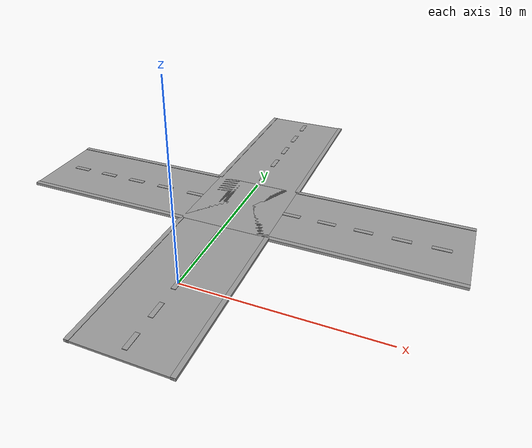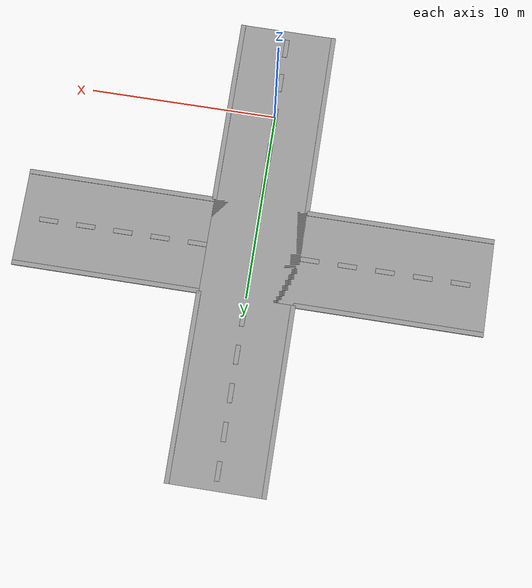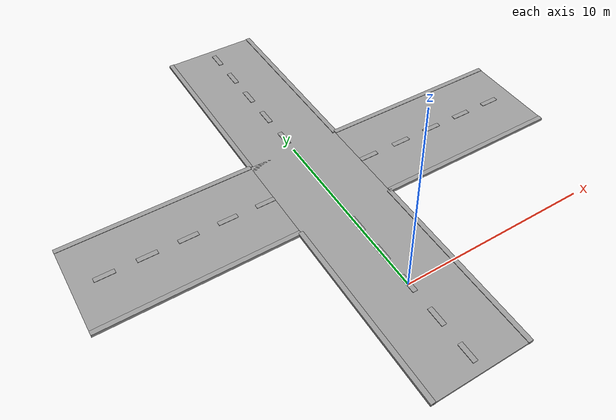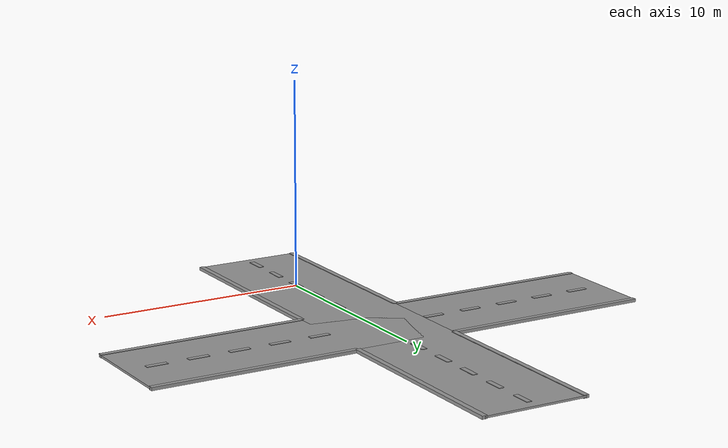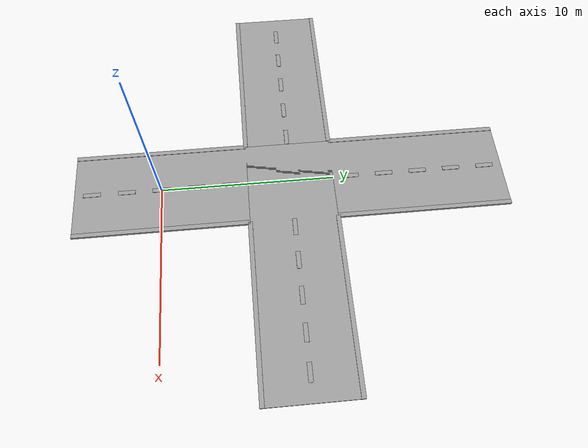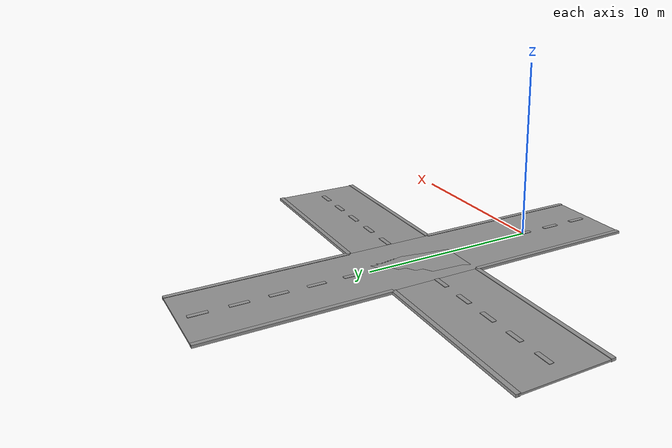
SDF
<sdf version="1.7">
 <model name="4_yol">
  <link name="link_0">
   <inertial>
    <mass>8812.5</mass>
    <inertia><ixx>73454</ixx><ixy>0</ixy><ixz>0</ixz><iyy>18375.9</iyy><iyz>0</iyz><izz>91796.9</izz></inertia>
   </inertial>
   <visual name="ModelPreview_1::link_0::visual_2">
    <pose>0 7.5 0 0 -0 0</pose>
    <geometry><box><size>25 5 0.1</size></box></geometry>
    <material>
     <lighting>1</lighting>
     <script><uri>file://media/materials/scripts/gazebo.material</uri><name>Gazebo/Grey</name></script>
     <shader type="pixel"><normal_map>__default__</normal_map></shader>
     <ambient>0.008 0.008 0.008 1</ambient>
     <diffuse>0.18 0.204 0.212 1</diffuse>
     <specular>0 0 0 1</specular>
     <emissive>0 0 0 1</emissive>
    </material>
   </visual>
   <visual name="ModelPreview_1::link_0::visual_4">
    <pose>2.5 15 0 0 -0 0</pose>
    <geometry><box><size>0.25 10 0.15</size></box></geometry>
    <material>
     <lighting>1</lighting>
     <script><uri>file://media/materials/scripts/gazebo.material</uri><name>Gazebo/Grey</name></script>
     <shader type="pixel"><normal_map>__default__</normal_map></shader>
     <ambient>1 1 1 1</ambient>
     <diffuse>1 1 1 1</diffuse>
     <specular>1 1 1 1</specular>
     <emissive>1 1 1 1</emissive>
    </material>
   </visual>
   <visual name="ModelPreview_1::link_0::visual_5">
    <pose>-2.5 15 0 0 -0 0</pose>
    <geometry><box><size>0.25 10 0.15</size></box></geometry>
    <material>
     <lighting>1</lighting>
     <script><uri>file://media/materials/scripts/gazebo.material</uri><name>Gazebo/Grey</name></script>
     <shader type="pixel"><normal_map>__default__</normal_map></shader>
     <ambient>1 1 1 1</ambient>
     <diffuse>1 1 1 1</diffuse>
     <specular>1 1 1 1</specular>
     <emissive>1 1 1 1</emissive>
    </material>
   </visual>
   <visual name="ModelPreview_1::link_0::visual_3">
    <pose>2.5 0 0 0 -0 0</pose>
    <geometry><box><size>0.25 10 0.15</size></box></geometry>
    <material>
     <lighting>1</lighting>
     <script><uri>file://media/materials/scripts/gazebo.material</uri><name>Gazebo/Grey</name></script>
     <shader type="pixel"><normal_map>__default__</normal_map></shader>
     <ambient>1 1 1 1</ambient>
     <diffuse>1 1 1 1</diffuse>
     <specular>1 1 1 1</specular>
     <emissive>1 1 1 1</emissive>
    </material>
   </visual>
   <visual name="ModelPreview_1::link_0::visual_6">
    <pose>-2.5 0 0 0 -0 0</pose>
    <geometry><box><size>0.25 10 0.15</size></box></geometry>
    <material>
     <lighting>1</lighting>
     <script><uri>file://media/materials/scripts/gazebo.material</uri><name>Gazebo/Grey</name></script>
     <shader type="pixel"><normal_map>__default__</normal_map></shader>
     <ambient>1 1 1 1</ambient>
     <diffuse>1 1 1 1</diffuse>
     <specular>1 1 1 1</specular>
     <emissive>1 1 1 1</emissive>
    </material>
   </visual>
   <visual name="ModelPreview_1::link_0::visual_7">
    <pose>7.5 5 0 0 -0 0</pose>
    <geometry><box><size>10 0.25 0.15</size></box></geometry>
    <material>
     <lighting>1</lighting>
     <script><uri>file://media/materials/scripts/gazebo.material</uri><name>Gazebo/Grey</name></script>
     <shader type="pixel"><normal_map>__default__</normal_map></shader>
     <ambient>1 1 1 1</ambient>
     <diffuse>1 1 1 1</diffuse>
     <specular>1 1 1 1</specular>
     <emissive>1 1 1 1</emissive>
    </material>
   </visual>
   <visual name="ModelPreview_1::link_0::visual_8">
    <pose>7.5 10 0 0 -0 0</pose>
    <geometry><box><size>10 0.25 0.15</size></box></geometry>
    <material>
     <lighting>1</lighting>
     <script><uri>file://media/materials/scripts/gazebo.material</uri><name>Gazebo/Grey</name></script>
     <shader type="pixel"><normal_map>__default__</normal_map></shader>
     <ambient>1 1 1 1</ambient>
     <diffuse>1 1 1 1</diffuse>
     <specular>1 1 1 1</specular>
     <emissive>1 1 1 1</emissive>
    </material>
   </visual>
   <visual name="ModelPreview_1::link_0::visual_9">
    <pose>-7.5 5 0 0 -0 0</pose>
    <geometry><box><size>10 0.25 0.15</size></box></geometry>
    <material>
     <lighting>1</lighting>
     <script><uri>file://media/materials/scripts/gazebo.material</uri><name>Gazebo/Grey</name></script>
     <shader type="pixel"><normal_map>__default__</normal_map></shader>
     <ambient>1 1 1 1</ambient>
     <diffuse>1 1 1 1</diffuse>
     <specular>1 1 1 1</specular>
     <emissive>1 1 1 1</emissive>
    </material>
   </visual>
   <visual name="ModelPreview_1::link_0::visual_10">
    <pose>-7.5 10 0 0 -0 0</pose>
    <geometry><box><size>10 0.25 0.15</size></box></geometry>
    <material>
     <lighting>1</lighting>
     <script><uri>file://media/materials/scripts/gazebo.material</uri><name>Gazebo/Grey</name></script>
     <shader type="pixel"><normal_map>__default__</normal_map></shader>
     <ambient>1 1 1 1</ambient>
     <diffuse>1 1 1 1</diffuse>
     <specular>1 1 1 1</specular>
     <emissive>1 1 1 1</emissive>
    </material>
   </visual>
   <visual name="visual">
    <pose>0 7.5 0 0 -0 0</pose>
    <geometry><box><size>5 25 0.1</size></box></geometry>
    <material>
     <lighting>1</lighting>
     <script><uri>file://media/materials/scripts/gazebo.material</uri><name>Gazebo/Grey</name></script>
     <shader type="pixel"><normal_map>__default__</normal_map></shader>
     <ambient>0.008 0.008 0.008 1</ambient>
     <diffuse>0.18 0.204 0.212 1</diffuse>
     <specular>0 0 0 1</specular>
     <emissive>0 0 0 1</emissive>
    </material>
   </visual>
   <collision name="collision">
    <pose>0 7.5 0 0 -0 0</pose>
    <geometry><box><size>5 25 0.15</size></box></geometry>
    <surface>
     <friction>
      <ode><mu>1</mu><mu2>1</mu2><fdir1>0 0 0</fdir1><slip1>0</slip1><slip2>0</slip2></ode>
      <torsional>
       <coefficient>1</coefficient>
       <patch_radius>0</patch_radius>
       <surface_radius>0</surface_radius>
       <use_patch_radius>1</use_patch_radius>
       <ode><slip>0</slip></ode>
      </torsional>
     </friction>
     <bounce><restitution_coefficient>0</restitution_coefficient><threshold>1e+06</threshold></bounce>
     <contact>
      <collide_without_contact>0</collide_without_contact>
      <collide_without_contact_bitmask>1</collide_without_contact_bitmask>
      <collide_bitmask>1</collide_bitmask>
      <ode>
       <soft_cfm>0</soft_cfm>
       <soft_erp>0.2</soft_erp>
       <kp>1e+13</kp>
       <kd>1</kd>
       <max_vel>0.01</max_vel>
       <min_depth>0</min_depth>
      </ode>
      <bullet>
       <split_impulse>1</split_impulse>
       <split_impulse_penetration_threshold>-0.01</split_impulse_penetration_threshold>
       <soft_cfm>0</soft_cfm>
       <soft_erp>0.2</soft_erp>
       <kp>1e+13</kp>
       <kd>1</kd>
      </bullet>
     </contact>
    </surface>
   </collision>
   <collision name="collision_1">
    <pose>0 7.5 0 0 -0 0</pose>
    <geometry><box><size>25 5 0.1</size></box></geometry>
    <surface>
     <friction>
      <ode><mu>1</mu><mu2>1</mu2><fdir1>0 0 0</fdir1><slip1>0</slip1><slip2>0</slip2></ode>
      <torsional>
       <coefficient>1</coefficient>
       <patch_radius>0</patch_radius>
       <surface_radius>0</surface_radius>
       <use_patch_radius>1</use_patch_radius>
       <ode><slip>0</slip></ode>
      </torsional>
     </friction>
     <bounce><restitution_coefficient>0</restitution_coefficient><threshold>1e+06</threshold></bounce>
     <contact>
      <collide_without_contact>0</collide_without_contact>
      <collide_without_contact_bitmask>1</collide_without_contact_bitmask>
      <collide_bitmask>1</collide_bitmask>
      <ode>
       <soft_cfm>0</soft_cfm>
       <soft_erp>0.2</soft_erp>
       <kp>1e+13</kp>
       <kd>1</kd>
       <max_vel>0.01</max_vel>
       <min_depth>0</min_depth>
      </ode>
      <bullet>
       <split_impulse>1</split_impulse>
       <split_impulse_penetration_threshold>-0.01</split_impulse_penetration_threshold>
       <soft_cfm>0</soft_cfm>
       <soft_erp>0.2</soft_erp>
       <kp>1e+13</kp>
       <kd>1</kd>
      </bullet>
     </contact>
    </surface>
   </collision>
  </link>
  <link name="link_1_clone">
   <inertial>
    <mass>44.0625</mass>
    <inertia><ixx>3.75449</ixx><ixy>0</ixy><ixz>0</ixz><iyy>0.312109</iyy><iyz>0</iyz><izz>3.90137</izz></inertia>
   </inertial>
   <pose>0 2 0 0 -0 0</pose>
   <visual name="visual">
    <geometry><box><size>0.25 1 0.15</size></box></geometry>
    <material>
     <lighting>1</lighting>
     <script><uri>file://media/materials/scripts/gazebo.material</uri><name>Gazebo/Grey</name></script>
     <shader type="normal_map_object_space"><normal_map>__default__</normal_map></shader>
     <ambient>1 1 1 1</ambient>
     <diffuse>1 1 1 1</diffuse>
     <specular>1 1 1 1</specular>
     <emissive>0 0 0 1</emissive>
    </material>
   </visual>
   <collision name="collision_1">
    <geometry><box><size>0.25 1 0.2</size></box></geometry>
    <surface>
     <friction>
      <ode><mu>1</mu><mu2>1</mu2><fdir1>0 0 0</fdir1><slip1>0</slip1><slip2>0</slip2></ode>
      <torsional>
       <coefficient>1</coefficient>
       <patch_radius>0</patch_radius>
       <surface_radius>0</surface_radius>
       <use_patch_radius>1</use_patch_radius>
       <ode><slip>0</slip></ode>
      </torsional>
     </friction>
     <bounce><restitution_coefficient>0</restitution_coefficient><threshold>1e+06</threshold></bounce>
     <contact>
      <collide_without_contact>0</collide_without_contact>
      <collide_without_contact_bitmask>1</collide_without_contact_bitmask>
      <collide_bitmask>1</collide_bitmask>
      <ode>
       <soft_cfm>0</soft_cfm>
       <soft_erp>0.2</soft_erp>
       <kp>1e+13</kp>
       <kd>1</kd>
       <max_vel>0.01</max_vel>
       <min_depth>0</min_depth>
      </ode>
      <bullet>
       <split_impulse>1</split_impulse>
       <split_impulse_penetration_threshold>-0.01</split_impulse_penetration_threshold>
       <soft_cfm>0</soft_cfm>
       <soft_erp>0.2</soft_erp>
       <kp>1e+13</kp>
       <kd>1</kd>
      </bullet>
     </contact>
    </surface>
   </collision>
  </link>
  <link name="link_1_clone_0">
   <inertial>
    <mass>44.0625</mass>
    <inertia><ixx>3.75449</ixx><ixy>0</ixy><ixz>0</ixz><iyy>0.312109</iyy><iyz>0</iyz><izz>3.90137</izz></inertia>
   </inertial>
   <visual name="visual">
    <geometry><box><size>0.25 1 0.15</size></box></geometry>
    <material>
     <lighting>1</lighting>
     <script><uri>file://media/materials/scripts/gazebo.material</uri><name>Gazebo/Grey</name></script>
     <shader type="normal_map_object_space"><normal_map>__default__</normal_map></shader>
     <ambient>1 1 1 1</ambient>
     <diffuse>1 1 1 1</diffuse>
     <specular>1 1 1 1</specular>
     <emissive>0 0 0 1</emissive>
    </material>
   </visual>
   <collision name="collision_1">
    <geometry><box><size>0.25 1 0.2</size></box></geometry>
    <surface>
     <friction>
      <ode><mu>1</mu><mu2>1</mu2><fdir1>0 0 0</fdir1><slip1>0</slip1><slip2>0</slip2></ode>
      <torsional>
       <coefficient>1</coefficient>
       <patch_radius>0</patch_radius>
       <surface_radius>0</surface_radius>
       <use_patch_radius>1</use_patch_radius>
       <ode><slip>0</slip></ode>
      </torsional>
     </friction>
     <bounce><restitution_coefficient>0</restitution_coefficient><threshold>1e+06</threshold></bounce>
     <contact>
      <collide_without_contact>0</collide_without_contact>
      <collide_without_contact_bitmask>1</collide_without_contact_bitmask>
      <collide_bitmask>1</collide_bitmask>
      <ode>
       <soft_cfm>0</soft_cfm>
       <soft_erp>0.2</soft_erp>
       <kp>1e+13</kp>
       <kd>1</kd>
       <max_vel>0.01</max_vel>
       <min_depth>0</min_depth>
      </ode>
      <bullet>
       <split_impulse>1</split_impulse>
       <split_impulse_penetration_threshold>-0.01</split_impulse_penetration_threshold>
       <soft_cfm>0</soft_cfm>
       <soft_erp>0.2</soft_erp>
       <kp>1e+13</kp>
       <kd>1</kd>
      </bullet>
     </contact>
    </surface>
   </collision>
  </link>
  <link name="link_1_clone_1">
   <inertial>
    <mass>44.0625</mass>
    <inertia><ixx>3.75449</ixx><ixy>0</ixy><ixz>0</ixz><iyy>0.312109</iyy><iyz>0</iyz><izz>3.90137</izz></inertia>
   </inertial>
   <pose>0 -2 0 0 -0 0</pose>
   <visual name="visual">
    <geometry><box><size>0.25 1 0.15</size></box></geometry>
    <material>
     <lighting>1</lighting>
     <script><uri>file://media/materials/scripts/gazebo.material</uri><name>Gazebo/Grey</name></script>
     <shader type="normal_map_object_space"><normal_map>__default__</normal_map></shader>
     <ambient>1 1 1 1</ambient>
     <diffuse>1 1 1 1</diffuse>
     <specular>1 1 1 1</specular>
     <emissive>0 0 0 1</emissive>
    </material>
   </visual>
   <collision name="collision_1">
    <geometry><box><size>0.25 1 0.2</size></box></geometry>
    <surface>
     <friction>
      <ode><mu>1</mu><mu2>1</mu2><fdir1>0 0 0</fdir1><slip1>0</slip1><slip2>0</slip2></ode>
      <torsional>
       <coefficient>1</coefficient>
       <patch_radius>0</patch_radius>
       <surface_radius>0</surface_radius>
       <use_patch_radius>1</use_patch_radius>
       <ode><slip>0</slip></ode>
      </torsional>
     </friction>
     <bounce><restitution_coefficient>0</restitution_coefficient><threshold>1e+06</threshold></bounce>
     <contact>
      <collide_without_contact>0</collide_without_contact>
      <collide_without_contact_bitmask>1</collide_without_contact_bitmask>
      <collide_bitmask>1</collide_bitmask>
      <ode>
       <soft_cfm>0</soft_cfm>
       <soft_erp>0.2</soft_erp>
       <kp>1e+13</kp>
       <kd>1</kd>
       <max_vel>0.01</max_vel>
       <min_depth>0</min_depth>
      </ode>
      <bullet>
       <split_impulse>1</split_impulse>
       <split_impulse_penetration_threshold>-0.01</split_impulse_penetration_threshold>
       <soft_cfm>0</soft_cfm>
       <soft_erp>0.2</soft_erp>
       <kp>1e+13</kp>
       <kd>1</kd>
      </bullet>
     </contact>
    </surface>
   </collision>
  </link>
  <link name="link_1_clone_2">
   <inertial>
    <mass>44.0625</mass>
    <inertia><ixx>3.75449</ixx><ixy>0</ixy><ixz>0</ixz><iyy>0.312109</iyy><iyz>0</iyz><izz>3.90137</izz></inertia>
   </inertial>
   <pose>0 4 0 0 -0 0</pose>
   <visual name="visual">
    <geometry><box><size>0.25 1 0.15</size></box></geometry>
    <material>
     <lighting>1</lighting>
     <script><uri>file://media/materials/scripts/gazebo.material</uri><name>Gazebo/Grey</name></script>
     <shader type="normal_map_object_space"><normal_map>__default__</normal_map></shader>
     <ambient>1 1 1 1</ambient>
     <diffuse>1 1 1 1</diffuse>
     <specular>1 1 1 1</specular>
     <emissive>0 0 0 1</emissive>
    </material>
   </visual>
   <collision name="collision_1">
    <geometry><box><size>0.25 1 0.2</size></box></geometry>
    <surface>
     <friction>
      <ode><mu>1</mu><mu2>1</mu2><fdir1>0 0 0</fdir1><slip1>0</slip1><slip2>0</slip2></ode>
      <torsional>
       <coefficient>1</coefficient>
       <patch_radius>0</patch_radius>
       <surface_radius>0</surface_radius>
       <use_patch_radius>1</use_patch_radius>
       <ode><slip>0</slip></ode>
      </torsional>
     </friction>
     <bounce><restitution_coefficient>0</restitution_coefficient><threshold>1e+06</threshold></bounce>
     <contact>
      <collide_without_contact>0</collide_without_contact>
      <collide_without_contact_bitmask>1</collide_without_contact_bitmask>
      <collide_bitmask>1</collide_bitmask>
      <ode>
       <soft_cfm>0</soft_cfm>
       <soft_erp>0.2</soft_erp>
       <kp>1e+13</kp>
       <kd>1</kd>
       <max_vel>0.01</max_vel>
       <min_depth>0</min_depth>
      </ode>
      <bullet>
       <split_impulse>1</split_impulse>
       <split_impulse_penetration_threshold>-0.01</split_impulse_penetration_threshold>
       <soft_cfm>0</soft_cfm>
       <soft_erp>0.2</soft_erp>
       <kp>1e+13</kp>
       <kd>1</kd>
      </bullet>
     </contact>
    </surface>
   </collision>
  </link>
  <link name="link_1_clone_2_clone">
   <inertial>
    <mass>44.0625</mass>
    <inertia><ixx>3.75449</ixx><ixy>0</ixy><ixz>0</ixz><iyy>0.312109</iyy><iyz>0</iyz><izz>3.90137</izz></inertia>
   </inertial>
   <pose>0 11 0 0 -0 0</pose>
   <visual name="visual">
    <geometry><box><size>0.25 1 0.15</size></box></geometry>
    <material>
     <lighting>1</lighting>
     <script><uri>file://media/materials/scripts/gazebo.material</uri><name>Gazebo/Grey</name></script>
     <shader type="normal_map_object_space"><normal_map>__default__</normal_map></shader>
     <ambient>1 1 1 1</ambient>
     <diffuse>1 1 1 1</diffuse>
     <specular>1 1 1 1</specular>
     <emissive>0 0 0 1</emissive>
    </material>
   </visual>
   <collision name="collision_1">
    <geometry><box><size>0.25 1 0.2</size></box></geometry>
    <surface>
     <friction>
      <ode><mu>1</mu><mu2>1</mu2><fdir1>0 0 0</fdir1><slip1>0</slip1><slip2>0</slip2></ode>
      <torsional>
       <coefficient>1</coefficient>
       <patch_radius>0</patch_radius>
       <surface_radius>0</surface_radius>
       <use_patch_radius>1</use_patch_radius>
       <ode><slip>0</slip></ode>
      </torsional>
     </friction>
     <bounce><restitution_coefficient>0</restitution_coefficient><threshold>1e+06</threshold></bounce>
     <contact>
      <collide_without_contact>0</collide_without_contact>
      <collide_without_contact_bitmask>1</collide_without_contact_bitmask>
      <collide_bitmask>1</collide_bitmask>
      <ode>
       <soft_cfm>0</soft_cfm>
       <soft_erp>0.2</soft_erp>
       <kp>1e+13</kp>
       <kd>1</kd>
       <max_vel>0.01</max_vel>
       <min_depth>0</min_depth>
      </ode>
      <bullet>
       <split_impulse>1</split_impulse>
       <split_impulse_penetration_threshold>-0.01</split_impulse_penetration_threshold>
       <soft_cfm>0</soft_cfm>
       <soft_erp>0.2</soft_erp>
       <kp>1e+13</kp>
       <kd>1</kd>
      </bullet>
     </contact>
    </surface>
   </collision>
  </link>
  <link name="link_1_clone_2_clone_0">
   <inertial>
    <mass>44.0625</mass>
    <inertia><ixx>3.75449</ixx><ixy>0</ixy><ixz>0</ixz><iyy>0.312109</iyy><iyz>0</iyz><izz>3.90137</izz></inertia>
   </inertial>
   <pose>-3 7.5 0 0 -0 0</pose>
   <visual name="visual">
    <geometry><box><size>1 0.25 0.15</size></box></geometry>
    <material>
     <lighting>1</lighting>
     <script><uri>file://media/materials/scripts/gazebo.material</uri><name>Gazebo/Grey</name></script>
     <shader type="normal_map_object_space"><normal_map>__default__</normal_map></shader>
     <ambient>1 1 1 1</ambient>
     <diffuse>1 1 1 1</diffuse>
     <specular>1 1 1 1</specular>
     <emissive>0 0 0 1</emissive>
    </material>
   </visual>
   <collision name="collision_1">
    <geometry><box><size>1 0.25 0.2</size></box></geometry>
    <surface>
     <friction>
      <ode><mu>1</mu><mu2>1</mu2><fdir1>0 0 0</fdir1><slip1>0</slip1><slip2>0</slip2></ode>
      <torsional>
       <coefficient>1</coefficient>
       <patch_radius>0</patch_radius>
       <surface_radius>0</surface_radius>
       <use_patch_radius>1</use_patch_radius>
       <ode><slip>0</slip></ode>
      </torsional>
     </friction>
     <bounce><restitution_coefficient>0</restitution_coefficient><threshold>1e+06</threshold></bounce>
     <contact>
      <collide_without_contact>0</collide_without_contact>
      <collide_without_contact_bitmask>1</collide_without_contact_bitmask>
      <collide_bitmask>1</collide_bitmask>
      <ode>
       <soft_cfm>0</soft_cfm>
       <soft_erp>0.2</soft_erp>
       <kp>1e+13</kp>
       <kd>1</kd>
       <max_vel>0.01</max_vel>
       <min_depth>0</min_depth>
      </ode>
      <bullet>
       <split_impulse>1</split_impulse>
       <split_impulse_penetration_threshold>-0.01</split_impulse_penetration_threshold>
       <soft_cfm>0</soft_cfm>
       <soft_erp>0.2</soft_erp>
       <kp>1e+13</kp>
       <kd>1</kd>
      </bullet>
     </contact>
    </surface>
   </collision>
  </link>
  <link name="link_1_clone_2_clone_0_clone">
   <inertial>
    <mass>44.0625</mass>
    <inertia><ixx>3.75449</ixx><ixy>0</ixy><ixz>0</ixz><iyy>0.312109</iyy><iyz>0</iyz><izz>3.90137</izz></inertia>
   </inertial>
   <pose>-5 7.5 0 0 -0 0</pose>
   <visual name="visual">
    <geometry><box><size>1 0.25 0.15</size></box></geometry>
    <material>
     <lighting>1</lighting>
     <script><uri>file://media/materials/scripts/gazebo.material</uri><name>Gazebo/Grey</name></script>
     <shader type="normal_map_object_space"><normal_map>__default__</normal_map></shader>
     <ambient>1 1 1 1</ambient>
     <diffuse>1 1 1 1</diffuse>
     <specular>1 1 1 1</specular>
     <emissive>0 0 0 1</emissive>
    </material>
   </visual>
   <collision name="collision_1">
    <geometry><box><size>1 0.25 0.2</size></box></geometry>
    <surface>
     <friction>
      <ode><mu>1</mu><mu2>1</mu2><fdir1>0 0 0</fdir1><slip1>0</slip1><slip2>0</slip2></ode>
      <torsional>
       <coefficient>1</coefficient>
       <patch_radius>0</patch_radius>
       <surface_radius>0</surface_radius>
       <use_patch_radius>1</use_patch_radius>
       <ode><slip>0</slip></ode>
      </torsional>
     </friction>
     <bounce><restitution_coefficient>0</restitution_coefficient><threshold>1e+06</threshold></bounce>
     <contact>
      <collide_without_contact>0</collide_without_contact>
      <collide_without_contact_bitmask>1</collide_without_contact_bitmask>
      <collide_bitmask>1</collide_bitmask>
      <ode>
       <soft_cfm>0</soft_cfm>
       <soft_erp>0.2</soft_erp>
       <kp>1e+13</kp>
       <kd>1</kd>
       <max_vel>0.01</max_vel>
       <min_depth>0</min_depth>
      </ode>
      <bullet>
       <split_impulse>1</split_impulse>
       <split_impulse_penetration_threshold>-0.01</split_impulse_penetration_threshold>
       <soft_cfm>0</soft_cfm>
       <soft_erp>0.2</soft_erp>
       <kp>1e+13</kp>
       <kd>1</kd>
      </bullet>
     </contact>
    </surface>
   </collision>
  </link>
  <link name="link_1_clone_2_clone_0_clone_0">
   <inertial>
    <mass>44.0625</mass>
    <inertia><ixx>3.75449</ixx><ixy>0</ixy><ixz>0</ixz><iyy>0.312109</iyy><iyz>0</iyz><izz>3.90137</izz></inertia>
   </inertial>
   <pose>-7 7.5 0 0 -0 0</pose>
   <visual name="visual">
    <geometry><box><size>1 0.25 0.15</size></box></geometry>
    <material>
     <lighting>1</lighting>
     <script><uri>file://media/materials/scripts/gazebo.material</uri><name>Gazebo/Grey</name></script>
     <shader type="normal_map_object_space"><normal_map>__default__</normal_map></shader>
     <ambient>1 1 1 1</ambient>
     <diffuse>1 1 1 1</diffuse>
     <specular>1 1 1 1</specular>
     <emissive>0 0 0 1</emissive>
    </material>
   </visual>
   <collision name="collision_1">
    <geometry><box><size>1 0.25 0.2</size></box></geometry>
    <surface>
     <friction>
      <ode><mu>1</mu><mu2>1</mu2><fdir1>0 0 0</fdir1><slip1>0</slip1><slip2>0</slip2></ode>
      <torsional>
       <coefficient>1</coefficient>
       <patch_radius>0</patch_radius>
       <surface_radius>0</surface_radius>
       <use_patch_radius>1</use_patch_radius>
       <ode><slip>0</slip></ode>
      </torsional>
     </friction>
     <bounce><restitution_coefficient>0</restitution_coefficient><threshold>1e+06</threshold></bounce>
     <contact>
      <collide_without_contact>0</collide_without_contact>
      <collide_without_contact_bitmask>1</collide_without_contact_bitmask>
      <collide_bitmask>1</collide_bitmask>
      <ode>
       <soft_cfm>0</soft_cfm>
       <soft_erp>0.2</soft_erp>
       <kp>1e+13</kp>
       <kd>1</kd>
       <max_vel>0.01</max_vel>
       <min_depth>0</min_depth>
      </ode>
      <bullet>
       <split_impulse>1</split_impulse>
       <split_impulse_penetration_threshold>-0.01</split_impulse_penetration_threshold>
       <soft_cfm>0</soft_cfm>
       <soft_erp>0.2</soft_erp>
       <kp>1e+13</kp>
       <kd>1</kd>
      </bullet>
     </contact>
    </surface>
   </collision>
  </link>
  <link name="link_1_clone_2_clone_0_clone_1">
   <inertial>
    <mass>44.0625</mass>
    <inertia><ixx>3.75449</ixx><ixy>0</ixy><ixz>0</ixz><iyy>0.312109</iyy><iyz>0</iyz><izz>3.90137</izz></inertia>
   </inertial>
   <pose>-9 7.5 0 0 -0 0</pose>
   <visual name="visual">
    <geometry><box><size>1 0.25 0.15</size></box></geometry>
    <material>
     <lighting>1</lighting>
     <script><uri>file://media/materials/scripts/gazebo.material</uri><name>Gazebo/Grey</name></script>
     <shader type="normal_map_object_space"><normal_map>__default__</normal_map></shader>
     <ambient>1 1 1 1</ambient>
     <diffuse>1 1 1 1</diffuse>
     <specular>1 1 1 1</specular>
     <emissive>0 0 0 1</emissive>
    </material>
   </visual>
   <collision name="collision_1">
    <geometry><box><size>1 0.25 0.2</size></box></geometry>
    <surface>
     <friction>
      <ode><mu>1</mu><mu2>1</mu2><fdir1>0 0 0</fdir1><slip1>0</slip1><slip2>0</slip2></ode>
      <torsional>
       <coefficient>1</coefficient>
       <patch_radius>0</patch_radius>
       <surface_radius>0</surface_radius>
       <use_patch_radius>1</use_patch_radius>
       <ode><slip>0</slip></ode>
      </torsional>
     </friction>
     <bounce><restitution_coefficient>0</restitution_coefficient><threshold>1e+06</threshold></bounce>
     <contact>
      <collide_without_contact>0</collide_without_contact>
      <collide_without_contact_bitmask>1</collide_without_contact_bitmask>
      <collide_bitmask>1</collide_bitmask>
      <ode>
       <soft_cfm>0</soft_cfm>
       <soft_erp>0.2</soft_erp>
       <kp>1e+13</kp>
       <kd>1</kd>
       <max_vel>0.01</max_vel>
       <min_depth>0</min_depth>
      </ode>
      <bullet>
       <split_impulse>1</split_impulse>
       <split_impulse_penetration_threshold>-0.01</split_impulse_penetration_threshold>
       <soft_cfm>0</soft_cfm>
       <soft_erp>0.2</soft_erp>
       <kp>1e+13</kp>
       <kd>1</kd>
      </bullet>
     </contact>
    </surface>
   </collision>
  </link>
  <link name="link_1_clone_2_clone_0_clone_1_clone">
   <inertial>
    <mass>44.0625</mass>
    <inertia><ixx>3.75449</ixx><ixy>0</ixy><ixz>0</ixz><iyy>0.312109</iyy><iyz>0</iyz><izz>3.90137</izz></inertia>
   </inertial>
   <pose>-11 7.5 0 0 -0 0</pose>
   <visual name="visual">
    <geometry><box><size>1 0.25 0.15</size></box></geometry>
    <material>
     <lighting>1</lighting>
     <script><uri>file://media/materials/scripts/gazebo.material</uri><name>Gazebo/Grey</name></script>
     <shader type="normal_map_object_space"><normal_map>__default__</normal_map></shader>
     <ambient>1 1 1 1</ambient>
     <diffuse>1 1 1 1</diffuse>
     <specular>1 1 1 1</specular>
     <emissive>0 0 0 1</emissive>
    </material>
   </visual>
   <collision name="collision_1">
    <geometry><box><size>1 0.25 0.2</size></box></geometry>
    <surface>
     <friction>
      <ode><mu>1</mu><mu2>1</mu2><fdir1>0 0 0</fdir1><slip1>0</slip1><slip2>0</slip2></ode>
      <torsional>
       <coefficient>1</coefficient>
       <patch_radius>0</patch_radius>
       <surface_radius>0</surface_radius>
       <use_patch_radius>1</use_patch_radius>
       <ode><slip>0</slip></ode>
      </torsional>
     </friction>
     <bounce><restitution_coefficient>0</restitution_coefficient><threshold>1e+06</threshold></bounce>
     <contact>
      <collide_without_contact>0</collide_without_contact>
      <collide_without_contact_bitmask>1</collide_without_contact_bitmask>
      <collide_bitmask>1</collide_bitmask>
      <ode>
       <soft_cfm>0</soft_cfm>
       <soft_erp>0.2</soft_erp>
       <kp>1e+13</kp>
       <kd>1</kd>
       <max_vel>0.01</max_vel>
       <min_depth>0</min_depth>
      </ode>
      <bullet>
       <split_impulse>1</split_impulse>
       <split_impulse_penetration_threshold>-0.01</split_impulse_penetration_threshold>
       <soft_cfm>0</soft_cfm>
       <soft_erp>0.2</soft_erp>
       <kp>1e+13</kp>
       <kd>1</kd>
      </bullet>
     </contact>
    </surface>
   </collision>
  </link>
  <link name="link_1_clone_2_clone_0_clone_1_clone_0">
   <inertial>
    <mass>44.0625</mass>
    <inertia><ixx>3.75449</ixx><ixy>0</ixy><ixz>0</ixz><iyy>0.312109</iyy><iyz>0</iyz><izz>3.90137</izz></inertia>
   </inertial>
   <pose>11 7.5 0 0 -0 0</pose>
   <visual name="visual">
    <geometry><box><size>1 0.25 0.15</size></box></geometry>
    <material>
     <lighting>1</lighting>
     <script><uri>file://media/materials/scripts/gazebo.material</uri><name>Gazebo/Grey</name></script>
     <shader type="normal_map_object_space"><normal_map>__default__</normal_map></shader>
     <ambient>1 1 1 1</ambient>
     <diffuse>1 1 1 1</diffuse>
     <specular>1 1 1 1</specular>
     <emissive>0 0 0 1</emissive>
    </material>
   </visual>
   <collision name="collision_1">
    <geometry><box><size>1 0.25 0.2</size></box></geometry>
    <surface>
     <friction>
      <ode><mu>1</mu><mu2>1</mu2><fdir1>0 0 0</fdir1><slip1>0</slip1><slip2>0</slip2></ode>
      <torsional>
       <coefficient>1</coefficient>
       <patch_radius>0</patch_radius>
       <surface_radius>0</surface_radius>
       <use_patch_radius>1</use_patch_radius>
       <ode><slip>0</slip></ode>
      </torsional>
     </friction>
     <bounce><restitution_coefficient>0</restitution_coefficient><threshold>1e+06</threshold></bounce>
     <contact>
      <collide_without_contact>0</collide_without_contact>
      <collide_without_contact_bitmask>1</collide_without_contact_bitmask>
      <collide_bitmask>1</collide_bitmask>
      <ode>
       <soft_cfm>0</soft_cfm>
       <soft_erp>0.2</soft_erp>
       <kp>1e+13</kp>
       <kd>1</kd>
       <max_vel>0.01</max_vel>
       <min_depth>0</min_depth>
      </ode>
      <bullet>
       <split_impulse>1</split_impulse>
       <split_impulse_penetration_threshold>-0.01</split_impulse_penetration_threshold>
       <soft_cfm>0</soft_cfm>
       <soft_erp>0.2</soft_erp>
       <kp>1e+13</kp>
       <kd>1</kd>
      </bullet>
     </contact>
    </surface>
   </collision>
  </link>
  <link name="link_1_clone_2_clone_0_clone_2">
   <inertial>
    <mass>44.0625</mass>
    <inertia><ixx>3.75449</ixx><ixy>0</ixy><ixz>0</ixz><iyy>0.312109</iyy><iyz>0</iyz><izz>3.90137</izz></inertia>
   </inertial>
   <pose>3 7.5 0 0 -0 0</pose>
   <visual name="visual">
    <geometry><box><size>1 0.25 0.15</size></box></geometry>
    <material>
     <lighting>1</lighting>
     <script><uri>file://media/materials/scripts/gazebo.material</uri><name>Gazebo/Grey</name></script>
     <shader type="normal_map_object_space"><normal_map>__default__</normal_map></shader>
     <ambient>1 1 1 1</ambient>
     <diffuse>1 1 1 1</diffuse>
     <specular>1 1 1 1</specular>
     <emissive>0 0 0 1</emissive>
    </material>
   </visual>
   <collision name="collision_1">
    <geometry><box><size>1 0.25 0.2</size></box></geometry>
    <surface>
     <friction>
      <ode><mu>1</mu><mu2>1</mu2><fdir1>0 0 0</fdir1><slip1>0</slip1><slip2>0</slip2></ode>
      <torsional>
       <coefficient>1</coefficient>
       <patch_radius>0</patch_radius>
       <surface_radius>0</surface_radius>
       <use_patch_radius>1</use_patch_radius>
       <ode><slip>0</slip></ode>
      </torsional>
     </friction>
     <bounce><restitution_coefficient>0</restitution_coefficient><threshold>1e+06</threshold></bounce>
     <contact>
      <collide_without_contact>0</collide_without_contact>
      <collide_without_contact_bitmask>1</collide_without_contact_bitmask>
      <collide_bitmask>1</collide_bitmask>
      <ode>
       <soft_cfm>0</soft_cfm>
       <soft_erp>0.2</soft_erp>
       <kp>1e+13</kp>
       <kd>1</kd>
       <max_vel>0.01</max_vel>
       <min_depth>0</min_depth>
      </ode>
      <bullet>
       <split_impulse>1</split_impulse>
       <split_impulse_penetration_threshold>-0.01</split_impulse_penetration_threshold>
       <soft_cfm>0</soft_cfm>
       <soft_erp>0.2</soft_erp>
       <kp>1e+13</kp>
       <kd>1</kd>
      </bullet>
     </contact>
    </surface>
   </collision>
  </link>
  <link name="link_1_clone_2_clone_0_clone_2_clone">
   <inertial>
    <mass>44.0625</mass>
    <inertia><ixx>3.75449</ixx><ixy>0</ixy><ixz>0</ixz><iyy>0.312109</iyy><iyz>0</iyz><izz>3.90137</izz></inertia>
   </inertial>
   <pose>5 7.5 0 0 -0 0</pose>
   <visual name="visual">
    <geometry><box><size>1 0.25 0.15</size></box></geometry>
    <material>
     <lighting>1</lighting>
     <script><uri>file://media/materials/scripts/gazebo.material</uri><name>Gazebo/Grey</name></script>
     <shader type="normal_map_object_space"><normal_map>__default__</normal_map></shader>
     <ambient>1 1 1 1</ambient>
     <diffuse>1 1 1 1</diffuse>
     <specular>1 1 1 1</specular>
     <emissive>0 0 0 1</emissive>
    </material>
   </visual>
   <collision name="collision_1">
    <geometry><box><size>1 0.25 0.2</size></box></geometry>
    <surface>
     <friction>
      <ode><mu>1</mu><mu2>1</mu2><fdir1>0 0 0</fdir1><slip1>0</slip1><slip2>0</slip2></ode>
      <torsional>
       <coefficient>1</coefficient>
       <patch_radius>0</patch_radius>
       <surface_radius>0</surface_radius>
       <use_patch_radius>1</use_patch_radius>
       <ode><slip>0</slip></ode>
      </torsional>
     </friction>
     <bounce><restitution_coefficient>0</restitution_coefficient><threshold>1e+06</threshold></bounce>
     <contact>
      <collide_without_contact>0</collide_without_contact>
      <collide_without_contact_bitmask>1</collide_without_contact_bitmask>
      <collide_bitmask>1</collide_bitmask>
      <ode>
       <soft_cfm>0</soft_cfm>
       <soft_erp>0.2</soft_erp>
       <kp>1e+13</kp>
       <kd>1</kd>
       <max_vel>0.01</max_vel>
       <min_depth>0</min_depth>
      </ode>
      <bullet>
       <split_impulse>1</split_impulse>
       <split_impulse_penetration_threshold>-0.01</split_impulse_penetration_threshold>
       <soft_cfm>0</soft_cfm>
       <soft_erp>0.2</soft_erp>
       <kp>1e+13</kp>
       <kd>1</kd>
      </bullet>
     </contact>
    </surface>
   </collision>
  </link>
  <link name="link_1_clone_2_clone_0_clone_2_clone_0">
   <inertial>
    <mass>44.0625</mass>
    <inertia><ixx>3.75449</ixx><ixy>0</ixy><ixz>0</ixz><iyy>0.312109</iyy><iyz>0</iyz><izz>3.90137</izz></inertia>
   </inertial>
   <pose>7 7.5 0 0 -0 0</pose>
   <visual name="visual">
    <geometry><box><size>1 0.25 0.15</size></box></geometry>
    <material>
     <lighting>1</lighting>
     <script><uri>file://media/materials/scripts/gazebo.material</uri><name>Gazebo/Grey</name></script>
     <shader type="normal_map_object_space"><normal_map>__default__</normal_map></shader>
     <ambient>1 1 1 1</ambient>
     <diffuse>1 1 1 1</diffuse>
     <specular>1 1 1 1</specular>
     <emissive>0 0 0 1</emissive>
    </material>
   </visual>
   <collision name="collision_1">
    <geometry><box><size>1 0.25 0.2</size></box></geometry>
    <surface>
     <friction>
      <ode><mu>1</mu><mu2>1</mu2><fdir1>0 0 0</fdir1><slip1>0</slip1><slip2>0</slip2></ode>
      <torsional>
       <coefficient>1</coefficient>
       <patch_radius>0</patch_radius>
       <surface_radius>0</surface_radius>
       <use_patch_radius>1</use_patch_radius>
       <ode><slip>0</slip></ode>
      </torsional>
     </friction>
     <bounce><restitution_coefficient>0</restitution_coefficient><threshold>1e+06</threshold></bounce>
     <contact>
      <collide_without_contact>0</collide_without_contact>
      <collide_without_contact_bitmask>1</collide_without_contact_bitmask>
      <collide_bitmask>1</collide_bitmask>
      <ode>
       <soft_cfm>0</soft_cfm>
       <soft_erp>0.2</soft_erp>
       <kp>1e+13</kp>
       <kd>1</kd>
       <max_vel>0.01</max_vel>
       <min_depth>0</min_depth>
      </ode>
      <bullet>
       <split_impulse>1</split_impulse>
       <split_impulse_penetration_threshold>-0.01</split_impulse_penetration_threshold>
       <soft_cfm>0</soft_cfm>
       <soft_erp>0.2</soft_erp>
       <kp>1e+13</kp>
       <kd>1</kd>
      </bullet>
     </contact>
    </surface>
   </collision>
  </link>
  <link name="link_1_clone_2_clone_0_clone_2_clone_1">
   <inertial>
    <mass>44.0625</mass>
    <inertia><ixx>3.75449</ixx><ixy>0</ixy><ixz>0</ixz><iyy>0.312109</iyy><iyz>0</iyz><izz>3.90137</izz></inertia>
   </inertial>
   <pose>9 7.5 0 0 -0 0</pose>
   <visual name="visual">
    <geometry><box><size>1 0.25 0.15</size></box></geometry>
    <material>
     <lighting>1</lighting>
     <script><uri>file://media/materials/scripts/gazebo.material</uri><name>Gazebo/Grey</name></script>
     <shader type="normal_map_object_space"><normal_map>__default__</normal_map></shader>
     <ambient>1 1 1 1</ambient>
     <diffuse>1 1 1 1</diffuse>
     <specular>1 1 1 1</specular>
     <emissive>0 0 0 1</emissive>
    </material>
   </visual>
   <collision name="collision_1">
    <geometry><box><size>1 0.25 0.2</size></box></geometry>
    <surface>
     <friction>
      <ode><mu>1</mu><mu2>1</mu2><fdir1>0 0 0</fdir1><slip1>0</slip1><slip2>0</slip2></ode>
      <torsional>
       <coefficient>1</coefficient>
       <patch_radius>0</patch_radius>
       <surface_radius>0</surface_radius>
       <use_patch_radius>1</use_patch_radius>
       <ode><slip>0</slip></ode>
      </torsional>
     </friction>
     <bounce><restitution_coefficient>0</restitution_coefficient><threshold>1e+06</threshold></bounce>
     <contact>
      <collide_without_contact>0</collide_without_contact>
      <collide_without_contact_bitmask>1</collide_without_contact_bitmask>
      <collide_bitmask>1</collide_bitmask>
      <ode>
       <soft_cfm>0</soft_cfm>
       <soft_erp>0.2</soft_erp>
       <kp>1e+13</kp>
       <kd>1</kd>
       <max_vel>0.01</max_vel>
       <min_depth>0</min_depth>
      </ode>
      <bullet>
       <split_impulse>1</split_impulse>
       <split_impulse_penetration_threshold>-0.01</split_impulse_penetration_threshold>
       <soft_cfm>0</soft_cfm>
       <soft_erp>0.2</soft_erp>
       <kp>1e+13</kp>
       <kd>1</kd>
      </bullet>
     </contact>
    </surface>
   </collision>
  </link>
  <link name="link_1_clone_2_clone_1">
   <inertial>
    <mass>44.0625</mass>
    <inertia><ixx>3.75449</ixx><ixy>0</ixy><ixz>0</ixz><iyy>0.312109</iyy><iyz>0</iyz><izz>3.90137</izz></inertia>
   </inertial>
   <pose>0 13 0 0 -0 0</pose>
   <visual name="visual">
    <geometry><box><size>0.25 1 0.15</size></box></geometry>
    <material>
     <lighting>1</lighting>
     <script><uri>file://media/materials/scripts/gazebo.material</uri><name>Gazebo/Grey</name></script>
     <shader type="normal_map_object_space"><normal_map>__default__</normal_map></shader>
     <ambient>1 1 1 1</ambient>
     <diffuse>1 1 1 1</diffuse>
     <specular>1 1 1 1</specular>
     <emissive>0 0 0 1</emissive>
    </material>
   </visual>
   <collision name="collision_1">
    <geometry><box><size>0.25 1 0.2</size></box></geometry>
    <surface>
     <friction>
      <ode><mu>1</mu><mu2>1</mu2><fdir1>0 0 0</fdir1><slip1>0</slip1><slip2>0</slip2></ode>
      <torsional>
       <coefficient>1</coefficient>
       <patch_radius>0</patch_radius>
       <surface_radius>0</surface_radius>
       <use_patch_radius>1</use_patch_radius>
       <ode><slip>0</slip></ode>
      </torsional>
     </friction>
     <bounce><restitution_coefficient>0</restitution_coefficient><threshold>1e+06</threshold></bounce>
     <contact>
      <collide_without_contact>0</collide_without_contact>
      <collide_without_contact_bitmask>1</collide_without_contact_bitmask>
      <collide_bitmask>1</collide_bitmask>
      <ode>
       <soft_cfm>0</soft_cfm>
       <soft_erp>0.2</soft_erp>
       <kp>1e+13</kp>
       <kd>1</kd>
       <max_vel>0.01</max_vel>
       <min_depth>0</min_depth>
      </ode>
      <bullet>
       <split_impulse>1</split_impulse>
       <split_impulse_penetration_threshold>-0.01</split_impulse_penetration_threshold>
       <soft_cfm>0</soft_cfm>
       <soft_erp>0.2</soft_erp>
       <kp>1e+13</kp>
       <kd>1</kd>
      </bullet>
     </contact>
    </surface>
   </collision>
  </link>
  <link name="link_1_clone_2_clone_2">
   <inertial>
    <mass>44.0625</mass>
    <inertia><ixx>3.75449</ixx><ixy>0</ixy><ixz>0</ixz><iyy>0.312109</iyy><iyz>0</iyz><izz>3.90137</izz></inertia>
   </inertial>
   <pose>0 15 0 0 -0 0</pose>
   <visual name="visual">
    <geometry><box><size>0.25 1 0.15</size></box></geometry>
    <material>
     <lighting>1</lighting>
     <script><uri>file://media/materials/scripts/gazebo.material</uri><name>Gazebo/Grey</name></script>
     <shader type="normal_map_object_space"><normal_map>__default__</normal_map></shader>
     <ambient>1 1 1 1</ambient>
     <diffuse>1 1 1 1</diffuse>
     <specular>1 1 1 1</specular>
     <emissive>0 0 0 1</emissive>
    </material>
   </visual>
   <collision name="collision_1">
    <geometry><box><size>0.25 1 0.2</size></box></geometry>
    <surface>
     <friction>
      <ode><mu>1</mu><mu2>1</mu2><fdir1>0 0 0</fdir1><slip1>0</slip1><slip2>0</slip2></ode>
      <torsional>
       <coefficient>1</coefficient>
       <patch_radius>0</patch_radius>
       <surface_radius>0</surface_radius>
       <use_patch_radius>1</use_patch_radius>
       <ode><slip>0</slip></ode>
      </torsional>
     </friction>
     <bounce><restitution_coefficient>0</restitution_coefficient><threshold>1e+06</threshold></bounce>
     <contact>
      <collide_without_contact>0</collide_without_contact>
      <collide_without_contact_bitmask>1</collide_without_contact_bitmask>
      <collide_bitmask>1</collide_bitmask>
      <ode>
       <soft_cfm>0</soft_cfm>
       <soft_erp>0.2</soft_erp>
       <kp>1e+13</kp>
       <kd>1</kd>
       <max_vel>0.01</max_vel>
       <min_depth>0</min_depth>
      </ode>
      <bullet>
       <split_impulse>1</split_impulse>
       <split_impulse_penetration_threshold>-0.01</split_impulse_penetration_threshold>
       <soft_cfm>0</soft_cfm>
       <soft_erp>0.2</soft_erp>
       <kp>1e+13</kp>
       <kd>1</kd>
      </bullet>
     </contact>
    </surface>
   </collision>
  </link>
  <link name="link_1_clone_2_clone_3">
   <inertial>
    <mass>44.0625</mass>
    <inertia><ixx>3.75449</ixx><ixy>0</ixy><ixz>0</ixz><iyy>0.312109</iyy><iyz>0</iyz><izz>3.90137</izz></inertia>
   </inertial>
   <pose>0 17 0 0 -0 0</pose>
   <visual name="visual">
    <geometry><box><size>0.25 1 0.15</size></box></geometry>
    <material>
     <lighting>1</lighting>
     <script><uri>file://media/materials/scripts/gazebo.material</uri><name>Gazebo/Grey</name></script>
     <shader type="normal_map_object_space"><normal_map>__default__</normal_map></shader>
     <ambient>1 1 1 1</ambient>
     <diffuse>1 1 1 1</diffuse>
     <specular>1 1 1 1</specular>
     <emissive>0 0 0 1</emissive>
    </material>
   </visual>
   <collision name="collision_1">
    <geometry><box><size>0.25 1 0.2</size></box></geometry>
    <surface>
     <friction>
      <ode><mu>1</mu><mu2>1</mu2><fdir1>0 0 0</fdir1><slip1>0</slip1><slip2>0</slip2></ode>
      <torsional>
       <coefficient>1</coefficient>
       <patch_radius>0</patch_radius>
       <surface_radius>0</surface_radius>
       <use_patch_radius>1</use_patch_radius>
       <ode><slip>0</slip></ode>
      </torsional>
     </friction>
     <bounce><restitution_coefficient>0</restitution_coefficient><threshold>1e+06</threshold></bounce>
     <contact>
      <collide_without_contact>0</collide_without_contact>
      <collide_without_contact_bitmask>1</collide_without_contact_bitmask>
      <collide_bitmask>1</collide_bitmask>
      <ode>
       <soft_cfm>0</soft_cfm>
       <soft_erp>0.2</soft_erp>
       <kp>1e+13</kp>
       <kd>1</kd>
       <max_vel>0.01</max_vel>
       <min_depth>0</min_depth>
      </ode>
      <bullet>
       <split_impulse>1</split_impulse>
       <split_impulse_penetration_threshold>-0.01</split_impulse_penetration_threshold>
       <soft_cfm>0</soft_cfm>
       <soft_erp>0.2</soft_erp>
       <kp>1e+13</kp>
       <kd>1</kd>
      </bullet>
     </contact>
    </surface>
   </collision>
  </link>
  <link name="link_1_clone_2_clone_4">
   <inertial>
    <mass>44.0625</mass>
    <inertia><ixx>3.75449</ixx><ixy>0</ixy><ixz>0</ixz><iyy>0.312109</iyy><iyz>0</iyz><izz>3.90137</izz></inertia>
   </inertial>
   <pose>0 19 0 0 -0 0</pose>
   <visual name="visual">
    <geometry><box><size>0.25 1 0.15</size></box></geometry>
    <material>
     <lighting>1</lighting>
     <script><uri>file://media/materials/scripts/gazebo.material</uri><name>Gazebo/Grey</name></script>
     <shader type="normal_map_object_space"><normal_map>__default__</normal_map></shader>
     <ambient>1 1 1 1</ambient>
     <diffuse>1 1 1 1</diffuse>
     <specular>1 1 1 1</specular>
     <emissive>0 0 0 1</emissive>
    </material>
   </visual>
   <collision name="collision_1">
    <geometry><box><size>0.25 1 0.2</size></box></geometry>
    <surface>
     <friction>
      <ode><mu>1</mu><mu2>1</mu2><fdir1>0 0 0</fdir1><slip1>0</slip1><slip2>0</slip2></ode>
      <torsional>
       <coefficient>1</coefficient>
       <patch_radius>0</patch_radius>
       <surface_radius>0</surface_radius>
       <use_patch_radius>1</use_patch_radius>
       <ode><slip>0</slip></ode>
      </torsional>
     </friction>
     <bounce><restitution_coefficient>0</restitution_coefficient><threshold>1e+06</threshold></bounce>
     <contact>
      <collide_without_contact>0</collide_without_contact>
      <collide_without_contact_bitmask>1</collide_without_contact_bitmask>
      <collide_bitmask>1</collide_bitmask>
      <ode>
       <soft_cfm>0</soft_cfm>
       <soft_erp>0.2</soft_erp>
       <kp>1e+13</kp>
       <kd>1</kd>
       <max_vel>0.01</max_vel>
       <min_depth>0</min_depth>
      </ode>
      <bullet>
       <split_impulse>1</split_impulse>
       <split_impulse_penetration_threshold>-0.01</split_impulse_penetration_threshold>
       <soft_cfm>0</soft_cfm>
       <soft_erp>0.2</soft_erp>
       <kp>1e+13</kp>
       <kd>1</kd>
      </bullet>
     </contact>
    </surface>
   </collision>
  </link>
  <link name="link_1_clone_3">
   <inertial>
    <mass>44.0625</mass>
    <inertia><ixx>3.75449</ixx><ixy>0</ixy><ixz>0</ixz><iyy>0.312109</iyy><iyz>0</iyz><izz>3.90137</izz></inertia>
   </inertial>
   <pose>0 -4 0 0 -0 0</pose>
   <visual name="visual">
    <geometry><box><size>0.25 1 0.15</size></box></geometry>
    <material>
     <lighting>1</lighting>
     <script><uri>file://media/materials/scripts/gazebo.material</uri><name>Gazebo/Grey</name></script>
     <shader type="normal_map_object_space"><normal_map>__default__</normal_map></shader>
     <ambient>1 1 1 1</ambient>
     <diffuse>1 1 1 1</diffuse>
     <specular>1 1 1 1</specular>
     <emissive>0 0 0 1</emissive>
    </material>
   </visual>
   <collision name="collision_1">
    <geometry><box><size>0.25 1 0.2</size></box></geometry>
    <surface>
     <friction>
      <ode><mu>1</mu><mu2>1</mu2><fdir1>0 0 0</fdir1><slip1>0</slip1><slip2>0</slip2></ode>
      <torsional>
       <coefficient>1</coefficient>
       <patch_radius>0</patch_radius>
       <surface_radius>0</surface_radius>
       <use_patch_radius>1</use_patch_radius>
       <ode><slip>0</slip></ode>
      </torsional>
     </friction>
     <bounce><restitution_coefficient>0</restitution_coefficient><threshold>1e+06</threshold></bounce>
     <contact>
      <collide_without_contact>0</collide_without_contact>
      <collide_without_contact_bitmask>1</collide_without_contact_bitmask>
      <collide_bitmask>1</collide_bitmask>
      <ode>
       <soft_cfm>0</soft_cfm>
       <soft_erp>0.2</soft_erp>
       <kp>1e+13</kp>
       <kd>1</kd>
       <max_vel>0.01</max_vel>
       <min_depth>0</min_depth>
      </ode>
      <bullet>
       <split_impulse>1</split_impulse>
       <split_impulse_penetration_threshold>-0.01</split_impulse_penetration_threshold>
       <soft_cfm>0</soft_cfm>
       <soft_erp>0.2</soft_erp>
       <kp>1e+13</kp>
       <kd>1</kd>
      </bullet>
     </contact>
    </surface>
   </collision>
  </link>
  <joint name="link_0_JOINT_9" type="fixed">
   <parent>link_0</parent>
   <child>link_1_clone_0</child>
   <physics>
    <ode><limit><cfm>0</cfm><erp>0.2</erp></limit><suspension><cfm>0</cfm><erp>0.2</erp></suspension></ode>
   </physics>
  </joint>
  <joint name="link_1_clone_0_JOINT_3" type="fixed">
   <parent>link_1_clone_0</parent>
   <child>link_1_clone</child>
   <physics>
    <ode><limit><cfm>0</cfm><erp>0.2</erp></limit><suspension><cfm>0</cfm><erp>0.2</erp></suspension></ode>
   </physics>
  </joint>
  <joint name="link_1_clone_0_JOINT_4" type="fixed">
   <parent>link_1_clone_0</parent>
   <child>link_1_clone_1</child>
   <physics>
    <ode><limit><cfm>0</cfm><erp>0.2</erp></limit><suspension><cfm>0</cfm><erp>0.2</erp></suspension></ode>
   </physics>
  </joint>
  <joint name="link_1_clone_0_JOINT_5" type="fixed">
   <parent>link_1_clone_0</parent>
   <child>link_1_clone_2</child>
   <physics>
    <ode><limit><cfm>0</cfm><erp>0.2</erp></limit><suspension><cfm>0</cfm><erp>0.2</erp></suspension></ode>
   </physics>
  </joint>
  <joint name="link_1_clone_0_JOINT_6" type="fixed">
   <parent>link_1_clone_0</parent>
   <child>link_1_clone_3</child>
   <physics>
    <ode><limit><cfm>0</cfm><erp>0.2</erp></limit><suspension><cfm>0</cfm><erp>0.2</erp></suspension></ode>
   </physics>
  </joint>
  <joint name="link_1_clone_2_JOINT_0" type="fixed">
   <parent>link_1_clone_2</parent>
   <child>link_1_clone_2_clone_0</child>
   <physics>
    <ode><limit><cfm>0</cfm><erp>0.2</erp></limit><suspension><cfm>0</cfm><erp>0.2</erp></suspension></ode>
   </physics>
  </joint>
  <joint name="link_1_clone_2_JOINT_1" type="fixed">
   <parent>link_1_clone_2</parent>
   <child>link_1_clone_2_clone_0_clone_2</child>
   <physics>
    <ode><limit><cfm>0</cfm><erp>0.2</erp></limit><suspension><cfm>0</cfm><erp>0.2</erp></suspension></ode>
   </physics>
  </joint>
  <joint name="link_1_clone_2_clone_0_JOINT_3" type="fixed">
   <parent>link_1_clone_2_clone_0</parent>
   <child>link_1_clone_2_clone_0_clone</child>
   <physics>
    <ode><limit><cfm>0</cfm><erp>0.2</erp></limit><suspension><cfm>0</cfm><erp>0.2</erp></suspension></ode>
   </physics>
  </joint>
  <joint name="link_1_clone_2_clone_0_clone_0_JOINT_5" type="fixed">
   <parent>link_1_clone_2_clone_0_clone_0</parent>
   <child>link_1_clone_2_clone_0_clone_1</child>
   <physics>
    <ode><limit><cfm>0</cfm><erp>0.2</erp></limit><suspension><cfm>0</cfm><erp>0.2</erp></suspension></ode>
   </physics>
  </joint>
  <joint name="link_1_clone_2_clone_0_clone_1_JOINT_2" type="revolute">
   <parent>link_1_clone_2_clone_0_clone_1</parent>
   <child>link_1_clone_2_clone_0_clone_1_clone</child>
   <axis>
    <xyz>1 0 0</xyz>
    <limit>
     <lower>-1.79769e+308</lower>
     <upper>1.79769e+308</upper>
     <effort>-1</effort>
     <velocity>-1</velocity>
    </limit>
    <dynamics>
     <spring_reference>0</spring_reference>
     <spring_stiffness>0</spring_stiffness>
     <damping>0</damping>
     <friction>0</friction>
    </dynamics>
   </axis>
   <physics>
    <ode><limit><cfm>0</cfm><erp>0.2</erp></limit><suspension><cfm>0</cfm><erp>0.2</erp></suspension></ode>
   </physics>
  </joint>
  <joint name="link_1_clone_2_clone_0_clone_2_JOINT_2" type="fixed">
   <parent>link_1_clone_2_clone_0_clone_2</parent>
   <child>link_1_clone_2_clone_0_clone_2_clone</child>
   <physics>
    <ode><limit><cfm>0</cfm><erp>0.2</erp></limit><suspension><cfm>0</cfm><erp>0.2</erp></suspension></ode>
   </physics>
  </joint>
  <joint name="link_1_clone_2_clone_0_clone_2_clone_0_JOINT_4" type="fixed">
   <parent>link_1_clone_2_clone_0_clone_2_clone_0</parent>
   <child>link_1_clone_2_clone_0_clone_2_clone_1</child>
   <physics>
    <ode><limit><cfm>0</cfm><erp>0.2</erp></limit><suspension><cfm>0</cfm><erp>0.2</erp></suspension></ode>
   </physics>
  </joint>
  <joint name="link_1_clone_2_clone_0_clone_2_clone_1_JOINT_3" type="revolute">
   <parent>link_1_clone_2_clone_0_clone_2_clone_1</parent>
   <child>link_1_clone_2_clone_0_clone_1_clone_0</child>
   <axis>
    <xyz>1 0 0</xyz>
    <limit>
     <lower>-1.79769e+308</lower>
     <upper>1.79769e+308</upper>
     <effort>-1</effort>
     <velocity>-1</velocity>
    </limit>
    <dynamics>
     <spring_reference>0</spring_reference>
     <spring_stiffness>0</spring_stiffness>
     <damping>0</damping>
     <friction>0</friction>
    </dynamics>
   </axis>
   <physics>
    <ode><limit><cfm>0</cfm><erp>0.2</erp></limit><suspension><cfm>0</cfm><erp>0.2</erp></suspension></ode>
   </physics>
  </joint>
  <joint name="link_1_clone_2_clone_0_clone_2_clone_JOINT_3" type="fixed">
   <parent>link_1_clone_2_clone_0_clone_2_clone</parent>
   <child>link_1_clone_2_clone_0_clone_2_clone_0</child>
   <physics>
    <ode><limit><cfm>0</cfm><erp>0.2</erp></limit><suspension><cfm>0</cfm><erp>0.2</erp></suspension></ode>
   </physics>
  </joint>
  <joint name="link_1_clone_2_clone_0_clone_JOINT_4" type="fixed">
   <parent>link_1_clone_2_clone_0_clone</parent>
   <child>link_1_clone_2_clone_0_clone_0</child>
   <physics>
    <ode><limit><cfm>0</cfm><erp>0.2</erp></limit><suspension><cfm>0</cfm><erp>0.2</erp></suspension></ode>
   </physics>
  </joint>
  <joint name="link_1_clone_2_clone_1_JOINT_9" type="fixed">
   <parent>link_1_clone_2_clone_1</parent>
   <child>link_1_clone_2_clone_2</child>
   <physics>
    <ode><limit><cfm>0</cfm><erp>0.2</erp></limit><suspension><cfm>0</cfm><erp>0.2</erp></suspension></ode>
   </physics>
  </joint>
  <joint name="link_1_clone_2_clone_2_JOINT_10" type="fixed">
   <parent>link_1_clone_2_clone_2</parent>
   <child>link_1_clone_2_clone_3</child>
   <physics>
    <ode><limit><cfm>0</cfm><erp>0.2</erp></limit><suspension><cfm>0</cfm><erp>0.2</erp></suspension></ode>
   </physics>
  </joint>
  <joint name="link_1_clone_2_clone_3_JOINT_11" type="fixed">
   <parent>link_1_clone_2_clone_3</parent>
   <child>link_1_clone_2_clone_4</child>
   <physics>
    <ode><limit><cfm>0</cfm><erp>0.2</erp></limit><suspension><cfm>0</cfm><erp>0.2</erp></suspension></ode>
   </physics>
  </joint>
  <joint name="link_1_clone_2_clone_JOINT_6" type="fixed">
   <parent>link_1_clone_2_clone</parent>
   <child>link_1_clone_2_clone_0_clone_2</child>
   <physics>
    <ode><limit><cfm>0</cfm><erp>0.2</erp></limit><suspension><cfm>0</cfm><erp>0.2</erp></suspension></ode>
   </physics>
  </joint>
  <joint name="link_1_clone_2_clone_JOINT_7" type="fixed">
   <parent>link_1_clone_2_clone</parent>
   <child>link_1_clone_2_clone_0</child>
   <physics>
    <ode><limit><cfm>0</cfm><erp>0.2</erp></limit><suspension><cfm>0</cfm><erp>0.2</erp></suspension></ode>
   </physics>
  </joint>
  <joint name="link_1_clone_2_clone_JOINT_8" type="fixed">
   <parent>link_1_clone_2_clone</parent>
   <child>link_1_clone_2_clone_1</child>
   <physics>
    <ode><limit><cfm>0</cfm><erp>0.2</erp></limit><suspension><cfm>0</cfm><erp>0.2</erp></suspension></ode>
   </physics>
  </joint>
  <static>1</static>
 </model>
</sdf>
